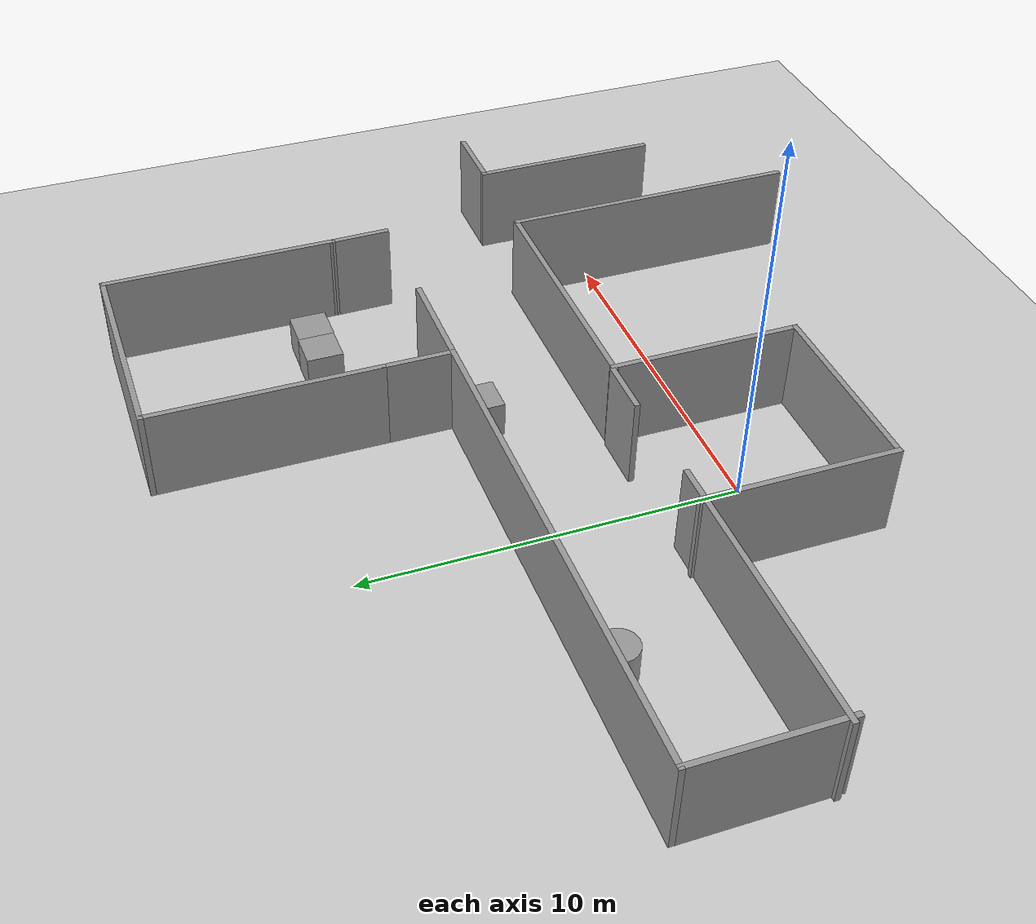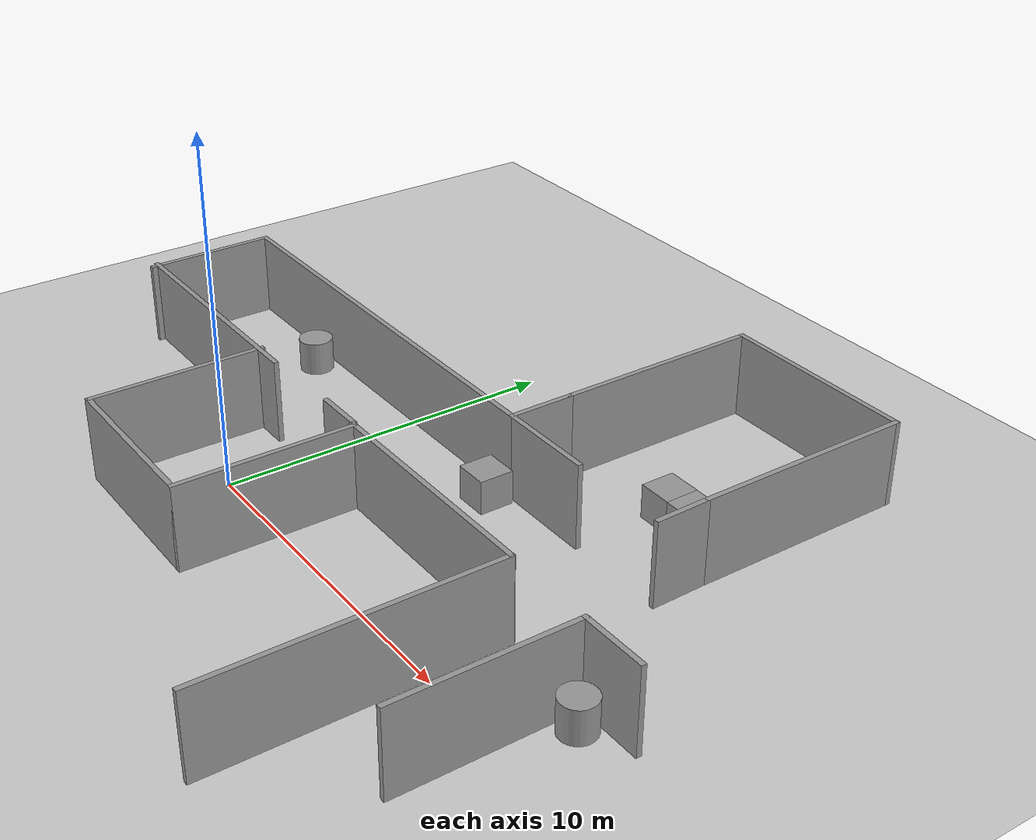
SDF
<sdf version="1.7">
 <world name="default">
  <model name="ground_plane">
   <static>1</static>
   <link name="link">
    <collision name="collision">
     <geometry><plane><normal>0 0 1</normal><size>100 100</size></plane></geometry>
     <surface><friction><ode><mu>100</mu><mu2>50</mu2></ode></friction></surface>
    </collision>
    <visual name="visual">
     <cast_shadows>0</cast_shadows>
     <geometry><plane><normal>0 0 1</normal><size>100 100</size></plane></geometry>
     <material>
      <script><uri>file://media/materials/scripts/gazebo.material</uri><name>Gazebo/Grey</name></script>
     </material>
    </visual>
   </link>
  </model>
  <model name="clutter_env023">
   <link name="Wall_0">
    <pose>-12.775 -5.9 0 0 0 -1.5708</pose>
    <visual name="Wall_0_Visual">
     <pose>0 0 1.25 0 -0 0</pose>
     <geometry><box><size>5.25 0.15 2.5</size></box></geometry>
     <material>
      <script><uri>file://media/materials/scripts/gazebo.material</uri><name>Gazebo/Grey</name></script>
      <ambient>1 1 1 1</ambient>
      <shader type="pixel"/>
     </material>
     <meta><layer>0</layer></meta>
    </visual>
    <collision name="Wall_0_Collision">
     <pose>0 0 1.25 0 -0 0</pose>
     <geometry><box><size>5.25 0.15 2.5</size></box></geometry>
     <surface>
      <friction>
       <ode><mu>1</mu><mu2>1</mu2><fdir1>0 0 0</fdir1><slip1>0</slip1><slip2>0</slip2></ode>
       <torsional>
        <coefficient>1</coefficient>
        <patch_radius>0</patch_radius>
        <surface_radius>0</surface_radius>
        <use_patch_radius>1</use_patch_radius>
        <ode><slip>0</slip></ode>
       </torsional>
      </friction>
      <bounce><restitution_coefficient>0</restitution_coefficient><threshold>1e+06</threshold></bounce>
      <contact>
       <collide_without_contact>0</collide_without_contact>
       <collide_without_contact_bitmask>1</collide_without_contact_bitmask>
       <collide_bitmask>1</collide_bitmask>
       <ode>
        <soft_cfm>0</soft_cfm>
        <soft_erp>0.2</soft_erp>
        <kp>1e+13</kp>
        <kd>1</kd>
        <max_vel>0.01</max_vel>
        <min_depth>0</min_depth>
       </ode>
       <bullet>
        <split_impulse>1</split_impulse>
        <split_impulse_penetration_threshold>-0.01</split_impulse_penetration_threshold>
        <soft_cfm>0</soft_cfm>
        <soft_erp>0.2</soft_erp>
        <kp>1e+13</kp>
        <kd>1</kd>
       </bullet>
      </contact>
     </surface>
    </collision>
   </link>
   <link name="Wall_1">
    <pose>-10.225 -8.45 0 0 -0 0</pose>
    <visual name="Wall_1_Visual">
     <pose>0 0 1.25 0 -0 0</pose>
     <geometry><box><size>5.25 0.15 2.5</size></box></geometry>
     <material>
      <script><uri>file://media/materials/scripts/gazebo.material</uri><name>Gazebo/Grey</name></script>
      <ambient>1 1 1 1</ambient>
      <shader type="pixel"/>
     </material>
     <meta><layer>0</layer></meta>
    </visual>
    <collision name="Wall_1_Collision">
     <pose>0 0 1.25 0 -0 0</pose>
     <geometry><box><size>5.25 0.15 2.5</size></box></geometry>
     <surface>
      <friction>
       <ode><mu>1</mu><mu2>1</mu2><fdir1>0 0 0</fdir1><slip1>0</slip1><slip2>0</slip2></ode>
       <torsional>
        <coefficient>1</coefficient>
        <patch_radius>0</patch_radius>
        <surface_radius>0</surface_radius>
        <use_patch_radius>1</use_patch_radius>
        <ode><slip>0</slip></ode>
       </torsional>
      </friction>
      <bounce><restitution_coefficient>0</restitution_coefficient><threshold>1e+06</threshold></bounce>
      <contact>
       <collide_without_contact>0</collide_without_contact>
       <collide_without_contact_bitmask>1</collide_without_contact_bitmask>
       <collide_bitmask>1</collide_bitmask>
       <ode>
        <soft_cfm>0</soft_cfm>
        <soft_erp>0.2</soft_erp>
        <kp>1e+13</kp>
        <kd>1</kd>
        <max_vel>0.01</max_vel>
        <min_depth>0</min_depth>
       </ode>
       <bullet>
        <split_impulse>1</split_impulse>
        <split_impulse_penetration_threshold>-0.01</split_impulse_penetration_threshold>
        <soft_cfm>0</soft_cfm>
        <soft_erp>0.2</soft_erp>
        <kp>1e+13</kp>
        <kd>1</kd>
       </bullet>
      </contact>
     </surface>
    </collision>
   </link>
   <link name="Wall_17">
    <pose>0.074999 5.025 0 0 -0 1.5708</pose>
    <visual name="Wall_17_Visual">
     <pose>0 0 1.25 0 -0 0</pose>
     <geometry><box><size>6.5 0.15 2.5</size></box></geometry>
     <material>
      <script><uri>file://media/materials/scripts/gazebo.material</uri><name>Gazebo/Grey</name></script>
      <ambient>1 1 1 1</ambient>
      <shader type="pixel"/>
     </material>
     <meta><layer>0</layer></meta>
    </visual>
    <collision name="Wall_17_Collision">
     <pose>0 0 1.25 0 -0 0</pose>
     <geometry><box><size>6.5 0.15 2.5</size></box></geometry>
     <surface>
      <friction>
       <ode><mu>1</mu><mu2>1</mu2><fdir1>0 0 0</fdir1><slip1>0</slip1><slip2>0</slip2></ode>
       <torsional>
        <coefficient>1</coefficient>
        <patch_radius>0</patch_radius>
        <surface_radius>0</surface_radius>
        <use_patch_radius>1</use_patch_radius>
        <ode><slip>0</slip></ode>
       </torsional>
      </friction>
      <bounce><restitution_coefficient>0</restitution_coefficient><threshold>1e+06</threshold></bounce>
      <contact>
       <collide_without_contact>0</collide_without_contact>
       <collide_without_contact_bitmask>1</collide_without_contact_bitmask>
       <collide_bitmask>1</collide_bitmask>
       <ode>
        <soft_cfm>0</soft_cfm>
        <soft_erp>0.2</soft_erp>
        <kp>1e+13</kp>
        <kd>1</kd>
        <max_vel>0.01</max_vel>
        <min_depth>0</min_depth>
       </ode>
       <bullet>
        <split_impulse>1</split_impulse>
        <split_impulse_penetration_threshold>-0.01</split_impulse_penetration_threshold>
        <soft_cfm>0</soft_cfm>
        <soft_erp>0.2</soft_erp>
        <kp>1e+13</kp>
        <kd>1</kd>
       </bullet>
      </contact>
     </surface>
    </collision>
   </link>
   <link name="Wall_18">
    <pose>-2.85 8.2 0 0 -0 3.14159</pose>
    <visual name="Wall_18_Visual">
     <pose>0 0 1.25 0 -0 0</pose>
     <geometry><box><size>6 0.15 2.5</size></box></geometry>
     <material>
      <script><uri>file://media/materials/scripts/gazebo.material</uri><name>Gazebo/Grey</name></script>
      <ambient>1 1 1 1</ambient>
      <shader type="pixel"/>
     </material>
     <meta><layer>0</layer></meta>
    </visual>
    <collision name="Wall_18_Collision">
     <pose>0 0 1.25 0 -0 0</pose>
     <geometry><box><size>6 0.15 2.5</size></box></geometry>
     <surface>
      <friction>
       <ode><mu>1</mu><mu2>1</mu2><fdir1>0 0 0</fdir1><slip1>0</slip1><slip2>0</slip2></ode>
       <torsional>
        <coefficient>1</coefficient>
        <patch_radius>0</patch_radius>
        <surface_radius>0</surface_radius>
        <use_patch_radius>1</use_patch_radius>
        <ode><slip>0</slip></ode>
       </torsional>
      </friction>
      <bounce><restitution_coefficient>0</restitution_coefficient><threshold>1e+06</threshold></bounce>
      <contact>
       <collide_without_contact>0</collide_without_contact>
       <collide_without_contact_bitmask>1</collide_without_contact_bitmask>
       <collide_bitmask>1</collide_bitmask>
       <ode>
        <soft_cfm>0</soft_cfm>
        <soft_erp>0.2</soft_erp>
        <kp>1e+13</kp>
        <kd>1</kd>
        <max_vel>0.01</max_vel>
        <min_depth>0</min_depth>
       </ode>
       <bullet>
        <split_impulse>1</split_impulse>
        <split_impulse_penetration_threshold>-0.01</split_impulse_penetration_threshold>
        <soft_cfm>0</soft_cfm>
        <soft_erp>0.2</soft_erp>
        <kp>1e+13</kp>
        <kd>1</kd>
       </bullet>
      </contact>
     </surface>
    </collision>
   </link>
   <link name="Wall_19">
    <pose>-5.775 5.15 0 0 0 -1.5708</pose>
    <visual name="Wall_19_Visual">
     <pose>0 0 1.25 0 -0 0</pose>
     <geometry><box><size>6.25 0.15 2.5</size></box></geometry>
     <material>
      <script><uri>file://media/materials/scripts/gazebo.material</uri><name>Gazebo/Grey</name></script>
      <ambient>1 1 1 1</ambient>
      <shader type="pixel"/>
     </material>
     <meta><layer>0</layer></meta>
    </visual>
    <collision name="Wall_19_Collision">
     <pose>0 0 1.25 0 -0 0</pose>
     <geometry><box><size>6.25 0.15 2.5</size></box></geometry>
     <surface>
      <friction>
       <ode><mu>1</mu><mu2>1</mu2><fdir1>0 0 0</fdir1><slip1>0</slip1><slip2>0</slip2></ode>
       <torsional>
        <coefficient>1</coefficient>
        <patch_radius>0</patch_radius>
        <surface_radius>0</surface_radius>
        <use_patch_radius>1</use_patch_radius>
        <ode><slip>0</slip></ode>
       </torsional>
      </friction>
      <bounce><restitution_coefficient>0</restitution_coefficient><threshold>1e+06</threshold></bounce>
      <contact>
       <collide_without_contact>0</collide_without_contact>
       <collide_without_contact_bitmask>1</collide_without_contact_bitmask>
       <collide_bitmask>1</collide_bitmask>
       <ode>
        <soft_cfm>0</soft_cfm>
        <soft_erp>0.2</soft_erp>
        <kp>1e+13</kp>
        <kd>1</kd>
        <max_vel>0.01</max_vel>
        <min_depth>0</min_depth>
       </ode>
       <bullet>
        <split_impulse>1</split_impulse>
        <split_impulse_penetration_threshold>-0.01</split_impulse_penetration_threshold>
        <soft_cfm>0</soft_cfm>
        <soft_erp>0.2</soft_erp>
        <kp>1e+13</kp>
        <kd>1</kd>
       </bullet>
      </contact>
     </surface>
    </collision>
   </link>
   <link name="Wall_2">
    <pose>-7.675 -5.9 0 0 -0 1.5708</pose>
    <visual name="Wall_2_Visual">
     <pose>0 0 1.25 0 -0 0</pose>
     <geometry><box><size>5.25 0.15 2.5</size></box></geometry>
     <material>
      <script><uri>file://media/materials/scripts/gazebo.material</uri><name>Gazebo/Grey</name></script>
      <ambient>1 1 1 1</ambient>
      <shader type="pixel"/>
     </material>
     <meta><layer>0</layer></meta>
    </visual>
    <collision name="Wall_2_Collision">
     <pose>0 0 1.25 0 -0 0</pose>
     <geometry><box><size>5.25 0.15 2.5</size></box></geometry>
     <surface>
      <friction>
       <ode><mu>1</mu><mu2>1</mu2><fdir1>0 0 0</fdir1><slip1>0</slip1><slip2>0</slip2></ode>
       <torsional>
        <coefficient>1</coefficient>
        <patch_radius>0</patch_radius>
        <surface_radius>0</surface_radius>
        <use_patch_radius>1</use_patch_radius>
        <ode><slip>0</slip></ode>
       </torsional>
      </friction>
      <bounce><restitution_coefficient>0</restitution_coefficient><threshold>1e+06</threshold></bounce>
      <contact>
       <collide_without_contact>0</collide_without_contact>
       <collide_without_contact_bitmask>1</collide_without_contact_bitmask>
       <collide_bitmask>1</collide_bitmask>
       <ode>
        <soft_cfm>0</soft_cfm>
        <soft_erp>0.2</soft_erp>
        <kp>1e+13</kp>
        <kd>1</kd>
        <max_vel>0.01</max_vel>
        <min_depth>0</min_depth>
       </ode>
       <bullet>
        <split_impulse>1</split_impulse>
        <split_impulse_penetration_threshold>-0.01</split_impulse_penetration_threshold>
        <soft_cfm>0</soft_cfm>
        <soft_erp>0.2</soft_erp>
        <kp>1e+13</kp>
        <kd>1</kd>
       </bullet>
      </contact>
     </surface>
    </collision>
   </link>
   <link name="Wall_20">
    <pose>-5.775 1.175 0 0 0 -1.5708</pose>
    <visual name="Wall_20_Visual">
     <pose>0 0 1.25 0 -0 0</pose>
     <geometry><box><size>2 0.15 2.5</size></box></geometry>
     <material>
      <script><uri>file://media/materials/scripts/gazebo.material</uri><name>Gazebo/Grey</name></script>
      <ambient>1 1 1 1</ambient>
      <shader type="pixel"/>
     </material>
     <meta><layer>0</layer></meta>
    </visual>
    <collision name="Wall_20_Collision">
     <pose>0 0 1.25 0 -0 0</pose>
     <geometry><box><size>2 0.15 2.5</size></box></geometry>
     <surface>
      <friction>
       <ode><mu>1</mu><mu2>1</mu2><fdir1>0 0 0</fdir1><slip1>0</slip1><slip2>0</slip2></ode>
       <torsional>
        <coefficient>1</coefficient>
        <patch_radius>0</patch_radius>
        <surface_radius>0</surface_radius>
        <use_patch_radius>1</use_patch_radius>
        <ode><slip>0</slip></ode>
       </torsional>
      </friction>
      <bounce><restitution_coefficient>0</restitution_coefficient><threshold>1e+06</threshold></bounce>
      <contact>
       <collide_without_contact>0</collide_without_contact>
       <collide_without_contact_bitmask>1</collide_without_contact_bitmask>
       <collide_bitmask>1</collide_bitmask>
       <ode>
        <soft_cfm>0</soft_cfm>
        <soft_erp>0.2</soft_erp>
        <kp>1e+13</kp>
        <kd>1</kd>
        <max_vel>0.01</max_vel>
        <min_depth>0</min_depth>
       </ode>
       <bullet>
        <split_impulse>1</split_impulse>
        <split_impulse_penetration_threshold>-0.01</split_impulse_penetration_threshold>
        <soft_cfm>0</soft_cfm>
        <soft_erp>0.2</soft_erp>
        <kp>1e+13</kp>
        <kd>1</kd>
       </bullet>
      </contact>
     </surface>
    </collision>
   </link>
   <link name="Wall_21">
    <pose>-12.575 0.25 0 0 -0 3.14159</pose>
    <visual name="Wall_21_Visual">
     <pose>0 0 1.25 0 -0 0</pose>
     <geometry><box><size>13.75 0.15 2.5</size></box></geometry>
     <material>
      <script><uri>file://media/materials/scripts/gazebo.material</uri><name>Gazebo/Grey</name></script>
      <ambient>1 1 1 1</ambient>
      <shader type="pixel"/>
     </material>
     <meta><layer>0</layer></meta>
    </visual>
    <collision name="Wall_21_Collision">
     <pose>0 0 1.25 0 -0 0</pose>
     <geometry><box><size>13.75 0.15 2.5</size></box></geometry>
     <surface>
      <friction>
       <ode><mu>1</mu><mu2>1</mu2><fdir1>0 0 0</fdir1><slip1>0</slip1><slip2>0</slip2></ode>
       <torsional>
        <coefficient>1</coefficient>
        <patch_radius>0</patch_radius>
        <surface_radius>0</surface_radius>
        <use_patch_radius>1</use_patch_radius>
        <ode><slip>0</slip></ode>
       </torsional>
      </friction>
      <bounce><restitution_coefficient>0</restitution_coefficient><threshold>1e+06</threshold></bounce>
      <contact>
       <collide_without_contact>0</collide_without_contact>
       <collide_without_contact_bitmask>1</collide_without_contact_bitmask>
       <collide_bitmask>1</collide_bitmask>
       <ode>
        <soft_cfm>0</soft_cfm>
        <soft_erp>0.2</soft_erp>
        <kp>1e+13</kp>
        <kd>1</kd>
        <max_vel>0.01</max_vel>
        <min_depth>0</min_depth>
       </ode>
       <bullet>
        <split_impulse>1</split_impulse>
        <split_impulse_penetration_threshold>-0.01</split_impulse_penetration_threshold>
        <soft_cfm>0</soft_cfm>
        <soft_erp>0.2</soft_erp>
        <kp>1e+13</kp>
        <kd>1</kd>
       </bullet>
      </contact>
     </surface>
    </collision>
   </link>
   <link name="Wall_22">
    <pose>-19.375 -1.675 0 0 0 -1.5708</pose>
    <visual name="Wall_22_Visual">
     <pose>0 0 1.25 0 -0 0</pose>
     <geometry><box><size>4 0.15 2.5</size></box></geometry>
     <material>
      <script><uri>file://media/materials/scripts/gazebo.material</uri><name>Gazebo/Grey</name></script>
      <ambient>1 1 1 1</ambient>
      <shader type="pixel"/>
     </material>
     <meta><layer>0</layer></meta>
    </visual>
    <collision name="Wall_22_Collision">
     <pose>0 0 1.25 0 -0 0</pose>
     <geometry><box><size>4 0.15 2.5</size></box></geometry>
     <surface>
      <friction>
       <ode><mu>1</mu><mu2>1</mu2><fdir1>0 0 0</fdir1><slip1>0</slip1><slip2>0</slip2></ode>
       <torsional>
        <coefficient>1</coefficient>
        <patch_radius>0</patch_radius>
        <surface_radius>0</surface_radius>
        <use_patch_radius>1</use_patch_radius>
        <ode><slip>0</slip></ode>
       </torsional>
      </friction>
      <bounce><restitution_coefficient>0</restitution_coefficient><threshold>1e+06</threshold></bounce>
      <contact>
       <collide_without_contact>0</collide_without_contact>
       <collide_without_contact_bitmask>1</collide_without_contact_bitmask>
       <collide_bitmask>1</collide_bitmask>
       <ode>
        <soft_cfm>0</soft_cfm>
        <soft_erp>0.2</soft_erp>
        <kp>1e+13</kp>
        <kd>1</kd>
        <max_vel>0.01</max_vel>
        <min_depth>0</min_depth>
       </ode>
       <bullet>
        <split_impulse>1</split_impulse>
        <split_impulse_penetration_threshold>-0.01</split_impulse_penetration_threshold>
        <soft_cfm>0</soft_cfm>
        <soft_erp>0.2</soft_erp>
        <kp>1e+13</kp>
        <kd>1</kd>
       </bullet>
      </contact>
     </surface>
    </collision>
   </link>
   <link name="Wall_23">
    <pose>-15.6606 -3.42681 0 0 -0 0</pose>
    <inertial>
     <inertia><ixx>0</ixx><ixy>0</ixy><ixz>0</ixz><iyy>0</iyy><iyz>0</iyz><izz>0</izz></inertia>
     <mass>0</mass>
    </inertial>
    <visual name="Wall_23_Visual">
     <pose>0 0 1.25 0 -0 0</pose>
     <geometry><box><size>7.79202 0.15 2.5</size></box></geometry>
     <material>
      <script><uri>file://media/materials/scripts/gazebo.material</uri><name>Gazebo/Grey</name></script>
      <ambient>1 1 1 1</ambient>
      <shader type="pixel"/>
     </material>
     <meta><layer>0</layer></meta>
    </visual>
    <collision name="Wall_23_Collision">
     <pose>0 0 1.25 0 -0 0</pose>
     <geometry><box><size>7.79202 0.15 2.5</size></box></geometry>
     <surface>
      <friction>
       <ode><mu>1</mu><mu2>1</mu2><fdir1>0 0 0</fdir1><slip1>0</slip1><slip2>0</slip2></ode>
       <torsional>
        <coefficient>1</coefficient>
        <patch_radius>0</patch_radius>
        <surface_radius>0</surface_radius>
        <use_patch_radius>1</use_patch_radius>
        <ode><slip>0</slip></ode>
       </torsional>
      </friction>
      <bounce><restitution_coefficient>0</restitution_coefficient><threshold>1e+06</threshold></bounce>
      <contact>
       <collide_without_contact>0</collide_without_contact>
       <collide_without_contact_bitmask>1</collide_without_contact_bitmask>
       <collide_bitmask>1</collide_bitmask>
       <ode>
        <soft_cfm>0</soft_cfm>
        <soft_erp>0.2</soft_erp>
        <kp>1e+13</kp>
        <kd>1</kd>
        <max_vel>0.01</max_vel>
        <min_depth>0</min_depth>
       </ode>
       <bullet>
        <split_impulse>1</split_impulse>
        <split_impulse_penetration_threshold>-0.01</split_impulse_penetration_threshold>
        <soft_cfm>0</soft_cfm>
        <soft_erp>0.2</soft_erp>
        <kp>1e+13</kp>
        <kd>1</kd>
       </bullet>
      </contact>
     </surface>
    </collision>
   </link>
   <link name="Wall_25">
    <pose>-4.35 0.25 0 0 -0 0</pose>
    <visual name="Wall_25_Visual">
     <pose>0 0 1.25 0 -0 0</pose>
     <geometry><box><size>3 0.15 2.5</size></box></geometry>
     <material>
      <script><uri>file://media/materials/scripts/gazebo.material</uri><name>Gazebo/Grey</name></script>
      <ambient>1 1 1 1</ambient>
      <shader type="pixel"/>
     </material>
     <meta><layer>0</layer></meta>
    </visual>
    <collision name="Wall_25_Collision">
     <pose>0 0 1.25 0 -0 0</pose>
     <geometry><box><size>3 0.15 2.5</size></box></geometry>
     <surface>
      <friction>
       <ode><mu>1</mu><mu2>1</mu2><fdir1>0 0 0</fdir1><slip1>0</slip1><slip2>0</slip2></ode>
       <torsional>
        <coefficient>1</coefficient>
        <patch_radius>0</patch_radius>
        <surface_radius>0</surface_radius>
        <use_patch_radius>1</use_patch_radius>
        <ode><slip>0</slip></ode>
       </torsional>
      </friction>
      <bounce><restitution_coefficient>0</restitution_coefficient><threshold>1e+06</threshold></bounce>
      <contact>
       <collide_without_contact>0</collide_without_contact>
       <collide_without_contact_bitmask>1</collide_without_contact_bitmask>
       <collide_bitmask>1</collide_bitmask>
       <ode>
        <soft_cfm>0</soft_cfm>
        <soft_erp>0.2</soft_erp>
        <kp>1e+13</kp>
        <kd>1</kd>
        <max_vel>0.01</max_vel>
        <min_depth>0</min_depth>
       </ode>
       <bullet>
        <split_impulse>1</split_impulse>
        <split_impulse_penetration_threshold>-0.01</split_impulse_penetration_threshold>
        <soft_cfm>0</soft_cfm>
        <soft_erp>0.2</soft_erp>
        <kp>1e+13</kp>
        <kd>1</kd>
       </bullet>
      </contact>
     </surface>
    </collision>
   </link>
   <link name="Wall_2_clone_0">
    <pose>-0.68287 -7.47635 0 0 -0 1.5708</pose>
    <inertial>
     <inertia><ixx>0</ixx><ixy>0</ixy><ixz>0</ixz><iyy>0</iyy><iyz>0</iyz><izz>0</izz></inertia>
     <mass>0</mass>
    </inertial>
    <visual name="Wall_2_Visual">
     <pose>0 0 1.25 0 -0 0</pose>
     <geometry><box><size>8.33804 0.15 2.5</size></box></geometry>
     <material>
      <script><uri>file://media/materials/scripts/gazebo.material</uri><name>Gazebo/Grey</name></script>
      <ambient>1 1 1 1</ambient>
      <shader type="pixel"/>
     </material>
     <meta><layer>0</layer></meta>
    </visual>
    <collision name="Wall_2_Collision">
     <pose>0 0 1.25 0 -0 0</pose>
     <geometry><box><size>8.33804 0.15 2.5</size></box></geometry>
     <surface>
      <friction>
       <ode><mu>1</mu><mu2>1</mu2><fdir1>0 0 0</fdir1><slip1>0</slip1><slip2>0</slip2></ode>
       <torsional>
        <coefficient>1</coefficient>
        <patch_radius>0</patch_radius>
        <surface_radius>0</surface_radius>
        <use_patch_radius>1</use_patch_radius>
        <ode><slip>0</slip></ode>
       </torsional>
      </friction>
      <bounce><restitution_coefficient>0</restitution_coefficient><threshold>1e+06</threshold></bounce>
      <contact>
       <collide_without_contact>0</collide_without_contact>
       <collide_without_contact_bitmask>1</collide_without_contact_bitmask>
       <collide_bitmask>1</collide_bitmask>
       <ode>
        <soft_cfm>0</soft_cfm>
        <soft_erp>0.2</soft_erp>
        <kp>1e+13</kp>
        <kd>1</kd>
        <max_vel>0.01</max_vel>
        <min_depth>0</min_depth>
       </ode>
       <bullet>
        <split_impulse>1</split_impulse>
        <split_impulse_penetration_threshold>-0.01</split_impulse_penetration_threshold>
        <soft_cfm>0</soft_cfm>
        <soft_erp>0.2</soft_erp>
        <kp>1e+13</kp>
        <kd>1</kd>
       </bullet>
      </contact>
     </surface>
    </collision>
   </link>
   <link name="Wall_3">
    <pose>-8.50057 -3.3019 0 0 -0 3.14159</pose>
    <inertial>
     <inertia><ixx>0</ixx><ixy>0</ixy><ixz>0</ixz><iyy>0</iyy><iyz>0</iyz><izz>0</izz></inertia>
     <mass>0</mass>
    </inertial>
    <visual name="Wall_3_Visual">
     <pose>0 0 1.25 0 -0 0</pose>
     <geometry><box><size>1.54468 0.15 2.5</size></box></geometry>
     <material>
      <script><uri>file://media/materials/scripts/gazebo.material</uri><name>Gazebo/Grey</name></script>
      <ambient>1 1 1 1</ambient>
      <shader type="pixel"/>
     </material>
     <meta><layer>0</layer></meta>
    </visual>
    <collision name="Wall_3_Collision">
     <pose>0 0 1.25 0 -0 0</pose>
     <geometry><box><size>1.54468 0.15 2.5</size></box></geometry>
     <surface>
      <friction>
       <ode><mu>1</mu><mu2>1</mu2><fdir1>0 0 0</fdir1><slip1>0</slip1><slip2>0</slip2></ode>
       <torsional>
        <coefficient>1</coefficient>
        <patch_radius>0</patch_radius>
        <surface_radius>0</surface_radius>
        <use_patch_radius>1</use_patch_radius>
        <ode><slip>0</slip></ode>
       </torsional>
      </friction>
      <bounce><restitution_coefficient>0</restitution_coefficient><threshold>1e+06</threshold></bounce>
      <contact>
       <collide_without_contact>0</collide_without_contact>
       <collide_without_contact_bitmask>1</collide_without_contact_bitmask>
       <collide_bitmask>1</collide_bitmask>
       <ode>
        <soft_cfm>0</soft_cfm>
        <soft_erp>0.2</soft_erp>
        <kp>1e+13</kp>
        <kd>1</kd>
        <max_vel>0.01</max_vel>
        <min_depth>0</min_depth>
       </ode>
       <bullet>
        <split_impulse>1</split_impulse>
        <split_impulse_penetration_threshold>-0.01</split_impulse_penetration_threshold>
        <soft_cfm>0</soft_cfm>
        <soft_erp>0.2</soft_erp>
        <kp>1e+13</kp>
        <kd>1</kd>
       </bullet>
      </contact>
     </surface>
    </collision>
   </link>
   <link name="Wall_32">
    <pose>0.090406 1.06672 0 0 0 -1.55113</pose>
    <visual name="Wall_32_Visual">
     <pose>0 0 1.25 0 -0 0</pose>
     <geometry><box><size>1.71686 0.15 2.5</size></box></geometry>
     <material>
      <script><uri>file://media/materials/scripts/gazebo.material</uri><name>Gazebo/Grey</name></script>
      <ambient>1 1 1 1</ambient>
      <shader type="pixel"/>
     </material>
     <meta><layer>0</layer></meta>
    </visual>
    <collision name="Wall_32_Collision">
     <pose>0 0 1.25 0 -0 0</pose>
     <geometry><box><size>1.71686 0.15 2.5</size></box></geometry>
     <surface>
      <friction>
       <ode><mu>1</mu><mu2>1</mu2><fdir1>0 0 0</fdir1><slip1>0</slip1><slip2>0</slip2></ode>
       <torsional>
        <coefficient>1</coefficient>
        <patch_radius>0</patch_radius>
        <surface_radius>0</surface_radius>
        <use_patch_radius>1</use_patch_radius>
        <ode><slip>0</slip></ode>
       </torsional>
      </friction>
      <bounce><restitution_coefficient>0</restitution_coefficient><threshold>1e+06</threshold></bounce>
      <contact>
       <collide_without_contact>0</collide_without_contact>
       <collide_without_contact_bitmask>1</collide_without_contact_bitmask>
       <collide_bitmask>1</collide_bitmask>
       <ode>
        <soft_cfm>0</soft_cfm>
        <soft_erp>0.2</soft_erp>
        <kp>1e+13</kp>
        <kd>1</kd>
        <max_vel>0.01</max_vel>
        <min_depth>0</min_depth>
       </ode>
       <bullet>
        <split_impulse>1</split_impulse>
        <split_impulse_penetration_threshold>-0.01</split_impulse_penetration_threshold>
        <soft_cfm>0</soft_cfm>
        <soft_erp>0.2</soft_erp>
        <kp>1e+13</kp>
        <kd>1</kd>
       </bullet>
      </contact>
     </surface>
    </collision>
   </link>
   <link name="Wall_34">
    <pose>3.02588 -3.35097 0 0 -0 0</pose>
    <inertial>
     <inertia><ixx>0</ixx><ixy>0</ixy><ixz>0</ixz><iyy>0</iyy><iyz>0</iyz><izz>0</izz></inertia>
     <mass>0</mass>
    </inertial>
    <visual name="Wall_34_Visual">
     <pose>0 0 1.25 0 -0 0</pose>
     <geometry><box><size>2.04819 0.15 2.5</size></box></geometry>
     <material>
      <script><uri>file://media/materials/scripts/gazebo.material</uri><name>Gazebo/Grey</name></script>
      <ambient>1 1 1 1</ambient>
      <shader type="pixel"/>
     </material>
     <meta><layer>0</layer></meta>
    </visual>
    <collision name="Wall_34_Collision">
     <pose>0 0 1.25 0 -0 0</pose>
     <geometry><box><size>2.04819 0.15 2.5</size></box></geometry>
     <surface>
      <friction>
       <ode><mu>1</mu><mu2>1</mu2><fdir1>0 0 0</fdir1><slip1>0</slip1><slip2>0</slip2></ode>
       <torsional>
        <coefficient>1</coefficient>
        <patch_radius>0</patch_radius>
        <surface_radius>0</surface_radius>
        <use_patch_radius>1</use_patch_radius>
        <ode><slip>0</slip></ode>
       </torsional>
      </friction>
      <bounce><restitution_coefficient>0</restitution_coefficient><threshold>1e+06</threshold></bounce>
      <contact>
       <collide_without_contact>0</collide_without_contact>
       <collide_without_contact_bitmask>1</collide_without_contact_bitmask>
       <collide_bitmask>1</collide_bitmask>
       <ode>
        <soft_cfm>0</soft_cfm>
        <soft_erp>0.2</soft_erp>
        <kp>1e+13</kp>
        <kd>1</kd>
        <max_vel>0.01</max_vel>
        <min_depth>0</min_depth>
       </ode>
       <bullet>
        <split_impulse>1</split_impulse>
        <split_impulse_penetration_threshold>-0.01</split_impulse_penetration_threshold>
        <soft_cfm>0</soft_cfm>
        <soft_erp>0.2</soft_erp>
        <kp>1e+13</kp>
        <kd>1</kd>
       </bullet>
      </contact>
     </surface>
    </collision>
   </link>
   <link name="Wall_4">
    <pose>-4.225 -3.35 0 0 -0 0</pose>
    <inertial>
     <inertia><ixx>0</ixx><ixy>0</ixy><ixz>0</ixz><iyy>0</iyy><iyz>0</iyz><izz>0</izz></inertia>
     <mass>0</mass>
    </inertial>
    <visual name="Wall_4_Visual">
     <pose>0 0 1.25 0 -0 0</pose>
     <geometry><box><size>7.19532 0.15 2.5</size></box></geometry>
     <material>
      <script><uri>file://media/materials/scripts/gazebo.material</uri><name>Gazebo/Grey</name></script>
      <ambient>1 1 1 1</ambient>
      <shader type="pixel"/>
     </material>
     <meta><layer>0</layer></meta>
    </visual>
    <collision name="Wall_4_Collision">
     <pose>0 0 1.25 0 -0 0</pose>
     <geometry><box><size>7.19532 0.15 2.5</size></box></geometry>
     <surface>
      <friction>
       <ode><mu>1</mu><mu2>1</mu2><fdir1>0 0 0</fdir1><slip1>0</slip1><slip2>0</slip2></ode>
       <torsional>
        <coefficient>1</coefficient>
        <patch_radius>0</patch_radius>
        <surface_radius>0</surface_radius>
        <use_patch_radius>1</use_patch_radius>
        <ode><slip>0</slip></ode>
       </torsional>
      </friction>
      <bounce><restitution_coefficient>0</restitution_coefficient><threshold>1e+06</threshold></bounce>
      <contact>
       <collide_without_contact>0</collide_without_contact>
       <collide_without_contact_bitmask>1</collide_without_contact_bitmask>
       <collide_bitmask>1</collide_bitmask>
       <ode>
        <soft_cfm>0</soft_cfm>
        <soft_erp>0.2</soft_erp>
        <kp>1e+13</kp>
        <kd>1</kd>
        <max_vel>0.01</max_vel>
        <min_depth>0</min_depth>
       </ode>
       <bullet>
        <split_impulse>1</split_impulse>
        <split_impulse_penetration_threshold>-0.01</split_impulse_penetration_threshold>
        <soft_cfm>0</soft_cfm>
        <soft_erp>0.2</soft_erp>
        <kp>1e+13</kp>
        <kd>1</kd>
       </bullet>
      </contact>
     </surface>
    </collision>
   </link>
   <link name="Wall_5">
    <pose>2.075 -5.9 0 0 0 -1.5708</pose>
    <visual name="Wall_5_Visual">
     <pose>0 0 1.25 0 -0 0</pose>
     <geometry><box><size>5.25 0.15 2.5</size></box></geometry>
     <material>
      <script><uri>file://media/materials/scripts/gazebo.material</uri><name>Gazebo/Grey</name></script>
      <ambient>1 1 1 1</ambient>
      <shader type="pixel"/>
     </material>
     <meta><layer>0</layer></meta>
    </visual>
    <collision name="Wall_5_Collision">
     <pose>0 0 1.25 0 -0 0</pose>
     <geometry><box><size>5.25 0.15 2.5</size></box></geometry>
     <surface>
      <friction>
       <ode><mu>1</mu><mu2>1</mu2><fdir1>0 0 0</fdir1><slip1>0</slip1><slip2>0</slip2></ode>
       <torsional>
        <coefficient>1</coefficient>
        <patch_radius>0</patch_radius>
        <surface_radius>0</surface_radius>
        <use_patch_radius>1</use_patch_radius>
        <ode><slip>0</slip></ode>
       </torsional>
      </friction>
      <bounce><restitution_coefficient>0</restitution_coefficient><threshold>1e+06</threshold></bounce>
      <contact>
       <collide_without_contact>0</collide_without_contact>
       <collide_without_contact_bitmask>1</collide_without_contact_bitmask>
       <collide_bitmask>1</collide_bitmask>
       <ode>
        <soft_cfm>0</soft_cfm>
        <soft_erp>0.2</soft_erp>
        <kp>1e+13</kp>
        <kd>1</kd>
        <max_vel>0.01</max_vel>
        <min_depth>0</min_depth>
       </ode>
       <bullet>
        <split_impulse>1</split_impulse>
        <split_impulse_penetration_threshold>-0.01</split_impulse_penetration_threshold>
        <soft_cfm>0</soft_cfm>
        <soft_erp>0.2</soft_erp>
        <kp>1e+13</kp>
        <kd>1</kd>
       </bullet>
      </contact>
     </surface>
    </collision>
   </link>
   <static>1</static>
   <pose>10.513 5.69176 0 0 -0 0</pose>
  </model>
  <model name="unit_box_clone_0">
   <pose>7.93736 8.66442 0.5 0 0 -0.000266</pose>
   <link name="link">
    <inertial>
     <mass>1</mass>
     <inertia>
      <ixx>0.166667</ixx>
      <ixy>0</ixy>
      <ixz>0</ixz>
      <iyy>0.166667</iyy>
      <iyz>0</iyz>
      <izz>0.166667</izz>
     </inertia>
    </inertial>
    <collision name="collision"><geometry><box><size>1 1 1</size></box></geometry></collision>
    <visual name="visual">
     <geometry><box><size>1 1 1</size></box></geometry>
     <material>
      <script><name>Gazebo/Grey</name><uri>file://media/materials/scripts/gazebo.material</uri></script>
     </material>
    </visual>
   </link>
  </model>
  <model name="unit_box_clone_1">
   <pose>8.93736 8.65408 0.5 -0 -0 -0.000266</pose>
   <link name="link">
    <inertial>
     <mass>1</mass>
     <inertia>
      <ixx>0.166667</ixx>
      <ixy>0</ixy>
      <ixz>0</ixz>
      <iyy>0.166667</iyy>
      <iyz>0</iyz>
      <izz>0.166667</izz>
     </inertia>
    </inertial>
    <collision name="collision"><geometry><box><size>1 1 1</size></box></geometry></collision>
    <visual name="visual">
     <geometry><box><size>1 1 1</size></box></geometry>
     <material>
      <script><name>Gazebo/Grey</name><uri>file://media/materials/scripts/gazebo.material</uri></script>
     </material>
    </visual>
   </link>
  </model>
  <model name="unit_box_clone_2">
   <pose>4.51356 5.28181 0.499995 0 1e-05 0</pose>
   <link name="link">
    <inertial>
     <mass>1</mass>
     <inertia>
      <ixx>0.166667</ixx>
      <ixy>0</ixy>
      <ixz>0</ixz>
      <iyy>0.166667</iyy>
      <iyz>0</iyz>
      <izz>0.166667</izz>
     </inertia>
    </inertial>
    <collision name="collision"><geometry><box><size>1 1 1</size></box></geometry></collision>
    <visual name="visual">
     <geometry><box><size>1 1 1</size></box></geometry>
     <material>
      <script><name>Gazebo/Grey</name><uri>file://media/materials/scripts/gazebo.material</uri></script>
     </material>
    </visual>
   </link>
  </model>
  <model name="unit_cylinder_clone">
   <pose>-4.49543 5.23132 0.499992 -4e-06 -4e-06 -0</pose>
   <link name="link">
    <inertial>
     <mass>1</mass>
     <inertia><ixx>0.145833</ixx><ixy>0</ixy><ixz>0</ixz><iyy>0.145833</iyy><iyz>0</iyz><izz>0.125</izz></inertia>
    </inertial>
    <collision name="collision">
     <geometry><cylinder><radius>0.5</radius><length>1</length></cylinder></geometry>
    </collision>
    <visual name="visual">
     <geometry><cylinder><radius>0.5</radius><length>1</length></cylinder></geometry>
     <material>
      <script><name>Gazebo/Grey</name><uri>file://media/materials/scripts/gazebo.material</uri></script>
     </material>
    </visual>
   </link>
  </model>
  <model name="unit_cylinder_clone_clone">
   <pose>13.163 1.76579 0.5 0 -0 -0.002351</pose>
   <link name="link">
    <inertial>
     <mass>1</mass>
     <inertia><ixx>0.145833</ixx><ixy>0</ixy><ixz>0</ixz><iyy>0.145833</iyy><iyz>0</iyz><izz>0.125</izz></inertia>
    </inertial>
    <collision name="collision">
     <geometry><cylinder><radius>0.5</radius><length>1</length></cylinder></geometry>
    </collision>
    <visual name="visual">
     <geometry><cylinder><radius>0.5</radius><length>1</length></cylinder></geometry>
     <material>
      <script><name>Gazebo/Grey</name><uri>file://media/materials/scripts/gazebo.material</uri></script>
     </material>
    </visual>
   </link>
  </model>
 </world>
</sdf>
